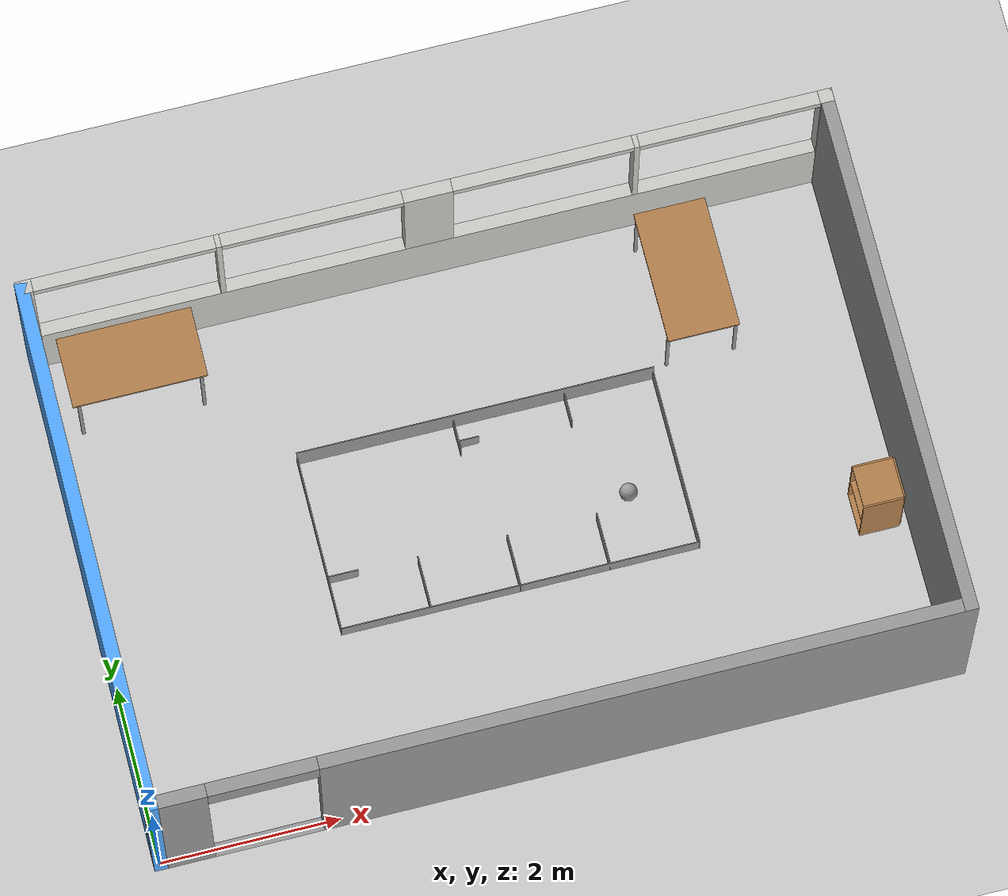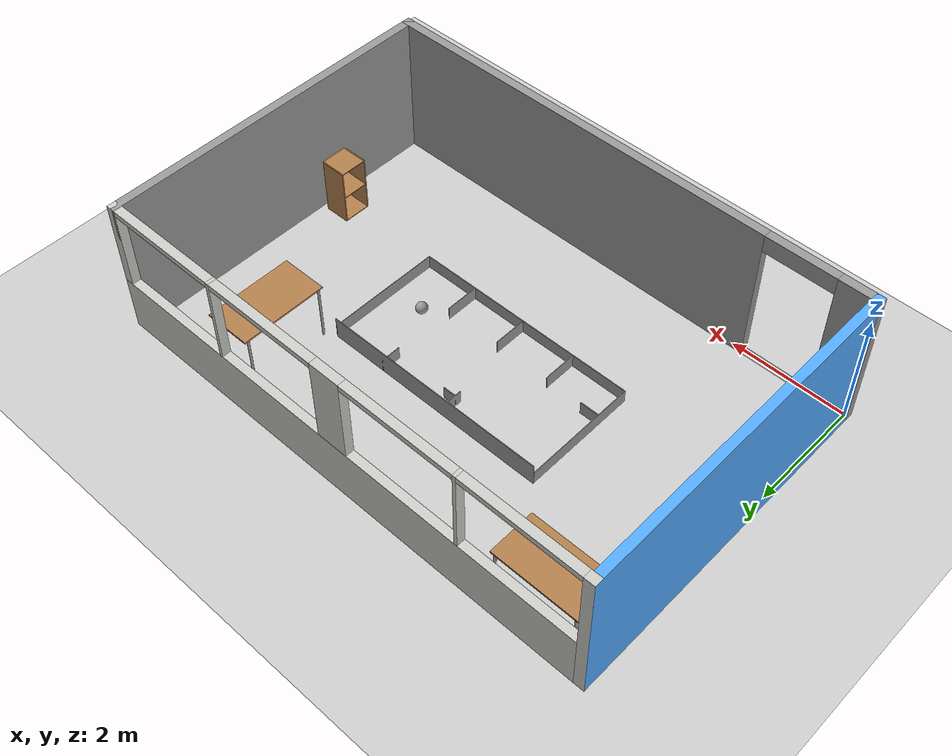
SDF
<sdf version="1.6">
 <world name="default">
  <light name="sun" type="directional">
   <pose>0 0 10 0 -0 0</pose>
   <diffuse>0.8 0.8 0.8 1</diffuse>
   <specular>0.2 0.2 0.2 1</specular>
   <attenuation>
    <range>1000</range>
    <constant>0.9</constant>
    <linear>0.01</linear>
    <quadratic>0.001</quadratic>
   </attenuation>
   <direction>-0.5 0.1 -0.9</direction>
  </light>
  <model name="ground_plane">
   <static>1</static>
   <link name="link">
    <collision name="collision">
     <geometry><plane><normal>0 0 1</normal><size>100 100</size></plane></geometry>
     <surface><friction><ode><mu>100</mu><mu2>50</mu2></ode></friction></surface>
    </collision>
    <visual name="visual">
     <cast_shadows>0</cast_shadows>
     <geometry><plane><normal>0 0 1</normal><size>100 100</size></plane></geometry>
     <material>
      <script><uri>file://media/materials/scripts/gazebo.material</uri><name>Gazebo/Grey</name></script>
     </material>
    </visual>
   </link>
  </model>
  <gravity>0 0 -9.8</gravity>
  <magnetic_field>6e-06 2.3e-05 -4.2e-05</magnetic_field>
  <atmosphere type="adiabatic"/>
  <physics name="default_physics" default="0" type="ode">
   <max_step_size>0.001</max_step_size>
   <real_time_factor>1</real_time_factor>
   <real_time_update_rate>1000</real_time_update_rate>
  </physics>
  <scene><ambient>0.4 0.4 0.4 1</ambient><background>0.7 0.7 0.7 1</background><shadows>1</shadows></scene>
  <spherical_coordinates>
   <surface_model>EARTH_WGS84</surface_model>
   <latitude_deg>0</latitude_deg>
   <longitude_deg>0</longitude_deg>
   <elevation>0</elevation>
   <heading_deg>0</heading_deg>
  </spherical_coordinates>
  <model name="mobileRoboticsWorkshop">
   <pose>4.425 2.925 0 0 -0 0</pose>
   <link name="Wall_10">
    <pose>0 2.925 0 0 -0 0</pose>
    <visual name="Wall_10_Visual_0">
     <pose>-4.40823 0 1.25 0 -0 0</pose>
     <geometry><box><size>0.18354 0.15 2.5</size></box></geometry>
     <material>
      <script><uri>file://media/materials/scripts/gazebo.material</uri><name>Gazebo/CeilingTiled</name></script>
      <ambient>1 1 1 1</ambient>
     </material>
     <meta><layer>0</layer></meta>
    </visual>
    <collision name="Wall_10_Collision_0">
     <geometry><box><size>0.18354 0.15 2.5</size></box></geometry>
     <pose>-4.40823 0 1.25 0 -0 0</pose>
    </collision>
    <visual name="Wall_10_Visual_1">
     <pose>0.09177 0 0.5 0 -0 0</pose>
     <geometry><box><size>8.81646 0.15 1</size></box></geometry>
     <material>
      <script><uri>file://media/materials/scripts/gazebo.material</uri><name>Gazebo/CeilingTiled</name></script>
      <ambient>1 1 1 1</ambient>
     </material>
     <meta><layer>0</layer></meta>
    </visual>
    <collision name="Wall_10_Collision_1">
     <geometry><box><size>8.81646 0.15 1</size></box></geometry>
     <pose>0.09177 0 0.5 0 -0 0</pose>
    </collision>
    <visual name="Wall_10_Visual_2">
     <pose>-2.28721 0 1.75 0 -0 0</pose>
     <geometry><box><size>0.0585 0.15 1.5</size></box></geometry>
     <material>
      <script><uri>file://media/materials/scripts/gazebo.material</uri><name>Gazebo/CeilingTiled</name></script>
      <ambient>1 1 1 1</ambient>
     </material>
     <meta><layer>0</layer></meta>
    </visual>
    <collision name="Wall_10_Collision_2">
     <geometry><box><size>0.0585 0.15 1.5</size></box></geometry>
     <pose>-2.28721 0 1.75 0 -0 0</pose>
    </collision>
    <visual name="Wall_10_Visual_3">
     <pose>0.01279 0 1.75 0 -0 0</pose>
     <geometry><box><size>0.5415 0.15 1.5</size></box></geometry>
     <material>
      <script><uri>file://media/materials/scripts/gazebo.material</uri><name>Gazebo/CeilingTiled</name></script>
      <ambient>1 1 1 1</ambient>
     </material>
     <meta><layer>0</layer></meta>
    </visual>
    <collision name="Wall_10_Collision_3">
     <geometry><box><size>0.5415 0.15 1.5</size></box></geometry>
     <pose>0.01279 0 1.75 0 -0 0</pose>
    </collision>
    <visual name="Wall_10_Visual_4">
     <pose>2.31279 0 1.75 0 -0 0</pose>
     <geometry><box><size>0.0585 0.15 1.5</size></box></geometry>
     <material>
      <script><uri>file://media/materials/scripts/gazebo.material</uri><name>Gazebo/CeilingTiled</name></script>
      <ambient>1 1 1 1</ambient>
     </material>
     <meta><layer>0</layer></meta>
    </visual>
    <collision name="Wall_10_Collision_4">
     <geometry><box><size>0.0585 0.15 1.5</size></box></geometry>
     <pose>2.31279 0 1.75 0 -0 0</pose>
    </collision>
    <visual name="Wall_10_Visual_5">
     <pose>4.42102 0 1.75 0 -0 0</pose>
     <geometry><box><size>0.15796 0.15 1.5</size></box></geometry>
     <material>
      <script><uri>file://media/materials/scripts/gazebo.material</uri><name>Gazebo/CeilingTiled</name></script>
      <ambient>1 1 1 1</ambient>
     </material>
     <meta><layer>0</layer></meta>
    </visual>
    <collision name="Wall_10_Collision_5">
     <geometry><box><size>0.15796 0.15 1.5</size></box></geometry>
     <pose>4.42102 0 1.75 0 -0 0</pose>
    </collision>
    <visual name="Wall_10_Visual_6">
     <pose>-3.31646 0 2.45 0 -0 0</pose>
     <geometry><box><size>2 0.15 0.1</size></box></geometry>
     <material>
      <script><uri>file://media/materials/scripts/gazebo.material</uri><name>Gazebo/CeilingTiled</name></script>
      <ambient>1 1 1 1</ambient>
     </material>
     <meta><layer>0</layer></meta>
    </visual>
    <collision name="Wall_10_Collision_6">
     <geometry><box><size>2 0.15 0.1</size></box></geometry>
     <pose>-3.31646 0 2.45 0 -0 0</pose>
    </collision>
    <visual name="Wall_10_Visual_7">
     <pose>-1.25796 0 2.45 0 -0 0</pose>
     <geometry><box><size>2 0.15 0.1</size></box></geometry>
     <material>
      <script><uri>file://media/materials/scripts/gazebo.material</uri><name>Gazebo/CeilingTiled</name></script>
      <ambient>1 1 1 1</ambient>
     </material>
     <meta><layer>0</layer></meta>
    </visual>
    <collision name="Wall_10_Collision_7">
     <geometry><box><size>2 0.15 0.1</size></box></geometry>
     <pose>-1.25796 0 2.45 0 -0 0</pose>
    </collision>
    <visual name="Wall_10_Visual_8">
     <pose>1.28354 0 2.45 0 -0 0</pose>
     <geometry><box><size>2 0.15 0.1</size></box></geometry>
     <material>
      <script><uri>file://media/materials/scripts/gazebo.material</uri><name>Gazebo/CeilingTiled</name></script>
      <ambient>1 1 1 1</ambient>
     </material>
     <meta><layer>0</layer></meta>
    </visual>
    <collision name="Wall_10_Collision_8">
     <geometry><box><size>2 0.15 0.1</size></box></geometry>
     <pose>1.28354 0 2.45 0 -0 0</pose>
    </collision>
    <visual name="Wall_10_Visual_9">
     <pose>3.34204 0 2.45 0 -0 0</pose>
     <geometry><box><size>2 0.15 0.1</size></box></geometry>
     <material>
      <script><uri>file://media/materials/scripts/gazebo.material</uri><name>Gazebo/CeilingTiled</name></script>
      <ambient>1 1 1 1</ambient>
     </material>
     <meta><layer>0</layer></meta>
    </visual>
    <collision name="Wall_10_Collision_9">
     <geometry><box><size>2 0.15 0.1</size></box></geometry>
     <pose>3.34204 0 2.45 0 -0 0</pose>
    </collision>
   </link>
   <link name="Wall_11">
    <collision name="Wall_11_Collision">
     <geometry><box><size>6 0.15 2.5</size></box></geometry>
     <pose>0 0 1.25 0 -0 0</pose>
    </collision>
    <visual name="Wall_11_Visual">
     <pose>0 0 1.25 0 -0 0</pose>
     <geometry><box><size>6 0.15 2.5</size></box></geometry>
     <material>
      <script><uri>file://media/materials/scripts/gazebo.material</uri><name>Gazebo/Grey</name></script>
      <ambient>1 1 1 1</ambient>
     </material>
     <meta><layer>0</layer></meta>
    </visual>
    <pose>4.425 0 0 0 0 -1.5708</pose>
   </link>
   <link name="Wall_12">
    <pose>0 -2.925 0 0 -0 3.14159</pose>
    <visual name="Wall_12_Visual_0">
     <pose>-0.9375 0 1.25 0 -0 0</pose>
     <geometry><box><size>7.125 0.15 2.5</size></box></geometry>
     <material>
      <script><uri>file://media/materials/scripts/gazebo.material</uri><name>Gazebo/Grey</name></script>
      <ambient>1 1 1 1</ambient>
     </material>
     <meta><layer>0</layer></meta>
    </visual>
    <collision name="Wall_12_Collision_0">
     <geometry><box><size>7.125 0.15 2.5</size></box></geometry>
     <pose>-0.9375 0 1.25 0 -0 0</pose>
    </collision>
    <visual name="Wall_12_Visual_1">
     <pose>4.1625 0 1.25 0 -0 0</pose>
     <geometry><box><size>0.675 0.15 2.5</size></box></geometry>
     <material>
      <script><uri>file://media/materials/scripts/gazebo.material</uri><name>Gazebo/Grey</name></script>
      <ambient>1 1 1 1</ambient>
     </material>
     <meta><layer>0</layer></meta>
    </visual>
    <collision name="Wall_12_Collision_1">
     <geometry><box><size>0.675 0.15 2.5</size></box></geometry>
     <pose>4.1625 0 1.25 0 -0 0</pose>
    </collision>
    <visual name="Wall_12_Visual_2">
     <pose>3.225 0 0 0 -0 0</pose>
     <geometry><box><size>1.2 0.15 0</size></box></geometry>
     <material>
      <script><uri>file://media/materials/scripts/gazebo.material</uri><name>Gazebo/Grey</name></script>
      <ambient>1 1 1 1</ambient>
     </material>
     <meta><layer>0</layer></meta>
    </visual>
    <collision name="Wall_12_Collision_2">
     <geometry><box><size>1.2 0.15 0</size></box></geometry>
     <pose>3.225 0 0 0 -0 0</pose>
    </collision>
    <visual name="Wall_12_Visual_3">
     <pose>3.225 0 2.35 0 -0 0</pose>
     <geometry><box><size>1.2 0.15 0.3</size></box></geometry>
     <material>
      <script><uri>file://media/materials/scripts/gazebo.material</uri><name>Gazebo/Grey</name></script>
      <ambient>1 1 1 1</ambient>
     </material>
     <meta><layer>0</layer></meta>
    </visual>
    <collision name="Wall_12_Collision_3">
     <geometry><box><size>1.2 0.15 0.3</size></box></geometry>
     <pose>3.225 0 2.35 0 -0 0</pose>
    </collision>
   </link>
   <link name="Wall_8">
    <collision name="Wall_8_Collision">
     <geometry><box><size>6 0.15 2.5</size></box></geometry>
     <pose>0 0 1.25 0 -0 0</pose>
    </collision>
    <visual name="Wall_8_Visual">
     <pose>0 0 1.25 0 -0 0</pose>
     <geometry><box><size>6 0.15 2.5</size></box></geometry>
     <material>
      <script><uri>file://media/materials/scripts/gazebo.material</uri><name>Gazebo/Grey</name></script>
      <ambient>0.333333 0.666667 1 1</ambient>
     </material>
     <meta><layer>0</layer></meta>
    </visual>
    <pose>-4.425 0 0 0 -0 1.5708</pose>
   </link>
   <static>1</static>
  </model>
  <model name="worldskillsCourt">
   <pose>4.5 3 0 0 -0 0</pose>
   <link name="Wall_0">
    <collision name="Wall_0_Collision">
     <geometry><box><size>4.01 0.01 0.24</size></box></geometry>
     <pose>0 0 0.12 0 -0 0</pose>
    </collision>
    <visual name="Wall_0_Visual">
     <pose>0 0 0.12 0 -0 0</pose>
     <geometry><box><size>4.01 0.01 0.24</size></box></geometry>
     <material>
      <script><uri>file://media/materials/scripts/gazebo.material</uri><name>Gazebo/Grey</name></script>
      <ambient>0.862745 0.862745 0.862745 1</ambient>
     </material>
     <meta><layer>0</layer></meta>
    </visual>
    <pose>0 -1 0 0 -0 0</pose>
   </link>
   <link name="Wall_1">
    <collision name="Wall_1_Collision">
     <geometry><box><size>2.01 0.01 0.24</size></box></geometry>
     <pose>0 0 0.12 0 -0 0</pose>
    </collision>
    <visual name="Wall_1_Visual">
     <pose>0 0 0.12 0 -0 0</pose>
     <geometry><box><size>2.01 0.01 0.24</size></box></geometry>
     <material>
      <script><uri>file://media/materials/scripts/gazebo.material</uri><name>Gazebo/Grey</name></script>
      <ambient>0.862745 0.862745 0.862745 1</ambient>
     </material>
     <meta><layer>0</layer></meta>
    </visual>
    <pose>2 0 0 0 -0 1.5708</pose>
   </link>
   <link name="Wall_10">
    <collision name="Wall_10_Collision">
     <geometry><box><size>0.591 0.01 0.24</size></box></geometry>
     <pose>0 0 0.12 0 -0 0</pose>
    </collision>
    <visual name="Wall_10_Visual">
     <pose>0 0 0.12 0 -0 0</pose>
     <geometry><box><size>0.591 0.01 0.24</size></box></geometry>
     <material>
      <script><uri>file://media/materials/scripts/gazebo.material</uri><name>Gazebo/Grey</name></script>
      <ambient>0.862745 0.862745 0.862745 1</ambient>
     </material>
     <meta><layer>0</layer></meta>
    </visual>
    <pose>0 -0.7095 0 0 -0 1.5708</pose>
   </link>
   <link name="Wall_12">
    <collision name="Wall_12_Collision">
     <geometry><box><size>0.591 0.01 0.24</size></box></geometry>
     <pose>0 0 0.12 0 -0 0</pose>
    </collision>
    <visual name="Wall_12_Visual">
     <pose>0 0 0.12 0 -0 0</pose>
     <geometry><box><size>0.591 0.01 0.24</size></box></geometry>
     <material>
      <script><uri>file://media/materials/scripts/gazebo.material</uri><name>Gazebo/Grey</name></script>
      <ambient>0.862745 0.862745 0.862745 1</ambient>
     </material>
     <meta><layer>0</layer></meta>
    </visual>
    <pose>1 -0.7095 0 0 -0 1.5708</pose>
   </link>
   <link name="Wall_16">
    <collision name="Wall_16_Collision">
     <geometry><box><size>0.341 0.01 0.24</size></box></geometry>
     <pose>0 0 0.12 0 -0 0</pose>
    </collision>
    <visual name="Wall_16_Visual">
     <pose>0 0 0.12 0 -0 0</pose>
     <geometry><box><size>0.341 0.01 0.24</size></box></geometry>
     <material>
      <script><uri>file://media/materials/scripts/gazebo.material</uri><name>Gazebo/Grey</name></script>
      <ambient>0.862745 0.862745 0.862745 1</ambient>
     </material>
     <meta><layer>0</layer></meta>
    </visual>
    <pose>1 0.8345 0 0 0 -1.5708</pose>
   </link>
   <link name="Wall_18">
    <collision name="Wall_18_Collision">
     <geometry><box><size>0.361 0.01 0.24</size></box></geometry>
     <pose>0 0 0.12 0 -0 0</pose>
    </collision>
    <visual name="Wall_18_Visual">
     <pose>0 0 0.12 0 -0 0</pose>
     <geometry><box><size>0.361 0.01 0.24</size></box></geometry>
     <material>
      <script><uri>file://media/materials/scripts/gazebo.material</uri><name>Gazebo/Grey</name></script>
      <ambient>0.862745 0.862745 0.862745 1</ambient>
     </material>
     <meta><layer>0</layer></meta>
    </visual>
    <pose>-0.25 0.8245 0 0 0 -1.5708</pose>
   </link>
   <link name="Wall_2">
    <collision name="Wall_2_Collision">
     <geometry><box><size>4.01 0.01 0.4</size></box></geometry>
     <pose>0 0 0.2 0 -0 0</pose>
    </collision>
    <visual name="Wall_2_Visual">
     <pose>0 0 0.2 0 -0 0</pose>
     <geometry><box><size>4.01 0.01 0.4</size></box></geometry>
     <material>
      <script><uri>file://media/materials/scripts/gazebo.material</uri><name>Gazebo/Grey</name></script>
      <ambient>0.862745 0.862745 0.862745 1</ambient>
     </material>
     <meta><layer>0</layer></meta>
    </visual>
    <pose>0 1 0 0 -0 3.14159</pose>
   </link>
   <link name="Wall_20">
    <collision name="Wall_20_Collision">
     <geometry><box><size>0.231 0.01 0.24</size></box></geometry>
     <pose>0 0 0.12 0 -0 0</pose>
    </collision>
    <visual name="Wall_20_Visual">
     <pose>0 0 0.12 0 -0 0</pose>
     <geometry><box><size>0.231 0.01 0.24</size></box></geometry>
     <material>
      <script><uri>file://media/materials/scripts/gazebo.material</uri><name>Gazebo/Grey</name></script>
      <ambient>0.862745 0.862745 0.862745 1</ambient>
     </material>
     <meta><layer>0</layer></meta>
    </visual>
    <pose>-0.1395 0.75 0 0 -0 0</pose>
   </link>
   <link name="Wall_3">
    <collision name="Wall_3_Collision">
     <geometry><box><size>2.01 0.01 0.24</size></box></geometry>
     <pose>0 0 0.12 0 -0 0</pose>
    </collision>
    <visual name="Wall_3_Visual">
     <pose>0 0 0.12 0 -0 0</pose>
     <geometry><box><size>2.01 0.01 0.24</size></box></geometry>
     <material>
      <script><uri>file://media/materials/scripts/gazebo.material</uri><name>Gazebo/Grey</name></script>
      <ambient>0.862745 0.862745 0.862745 1</ambient>
     </material>
     <meta><layer>0</layer></meta>
    </visual>
    <pose>-2 0 0 0 0 -1.5708</pose>
   </link>
   <link name="Wall_5">
    <collision name="Wall_5_Collision">
     <geometry><box><size>0.341 0.01 0.24</size></box></geometry>
     <pose>0 0 0.12 0 -0 0</pose>
    </collision>
    <visual name="Wall_5_Visual">
     <pose>0 0 0.12 0 -0 0</pose>
     <geometry><box><size>0.341 0.01 0.24</size></box></geometry>
     <material>
      <script><uri>file://media/materials/scripts/gazebo.material</uri><name>Gazebo/Grey</name></script>
      <ambient>0.862745 0.862745 0.862745 1</ambient>
     </material>
     <meta><layer>0</layer></meta>
    </visual>
    <pose>-1.8345 -0.4 0 0 -0 0</pose>
   </link>
   <link name="Wall_7">
    <collision name="Wall_7_Collision">
     <geometry><box><size>0.591 0.01 0.24</size></box></geometry>
     <pose>0 0 0.12 0 -0 0</pose>
    </collision>
    <visual name="Wall_7_Visual">
     <pose>0 0 0.12 0 -0 0</pose>
     <geometry><box><size>0.591 0.01 0.24</size></box></geometry>
     <material>
      <script><uri>file://media/materials/scripts/gazebo.material</uri><name>Gazebo/Grey</name></script>
      <ambient>0.862745 0.862745 0.862745 1</ambient>
     </material>
     <meta><layer>0</layer></meta>
    </visual>
    <pose>-1 -0.7085 0 0 -0 1.5708</pose>
   </link>
   <static>1</static>
  </model>
  <model name="cabinet">
   <static>1</static>
   <link name="cabinet_bottom_plate">
    <inertial>
     <pose>0 0 -1 0 -0 0</pose>
     <inertia><ixx>2.05</ixx><ixy>0</ixy><ixz>0</ixz><iyy>2.05</iyy><iyz>0</iyz><izz>2.05</izz></inertia>
     <mass>25</mass>
    </inertial>
    <collision name="cabinet_bottom_plate_geom">
     <pose>0 0 0.01 0 -0 0</pose>
     <geometry><box><size>0.45 0.45 0.02</size></box></geometry>
    </collision>
    <visual name="cabinet_bottom_plate_geom_visual">
     <pose>0 0 0.01 0 -0 0</pose>
     <geometry><box><size>0.45 0.45 0.02</size></box></geometry>
     <material>
      <script><uri>file://media/materials/scripts/gazebo.material</uri><name>Gazebo/Wood</name></script>
     </material>
    </visual>
    <collision name="cabinet_bottom_plate_geom_cabinet_back_plate">
     <pose>0.235 0 0.51 0 -0 0</pose>
     <geometry><box><size>0.02 0.45 1.02</size></box></geometry>
    </collision>
    <visual name="cabinet_bottom_plate_geom_cabinet_back_plate_visual">
     <pose>0.235 0 0.51 0 -0 0</pose>
     <geometry><box><size>0.02 0.45 1.02</size></box></geometry>
     <material>
      <script><uri>file://media/materials/scripts/gazebo.material</uri><name>Gazebo/Wood</name></script>
     </material>
    </visual>
    <collision name="cabinet_bottom_plate_geom_cabinet_left_plate">
     <pose>0 0.235 0.51 0 -0 0</pose>
     <geometry><box><size>0.45 0.02 1.02</size></box></geometry>
    </collision>
    <visual name="cabinet_bottom_plate_geom_cabinet_left_plate_visual">
     <pose>0 0.235 0.51 0 -0 0</pose>
     <geometry><box><size>0.45 0.02 1.02</size></box></geometry>
     <material>
      <script><uri>file://media/materials/scripts/gazebo.material</uri><name>Gazebo/Wood</name></script>
     </material>
    </visual>
    <collision name="cabinet_bottom_plate_geom_cabinet_middle_plate">
     <pose>0 0 0.51 0 -0 0</pose>
     <geometry><box><size>0.45 0.45 0.02</size></box></geometry>
    </collision>
    <visual name="cabinet_bottom_plate_geom_cabinet_middle_plate_visual">
     <pose>0 0 0.51 0 -0 0</pose>
     <geometry><box><size>0.45 0.45 0.02</size></box></geometry>
     <material>
      <script><uri>file://media/materials/scripts/gazebo.material</uri><name>Gazebo/Wood</name></script>
     </material>
    </visual>
    <collision name="cabinet_bottom_plate_geom_cabinet_right_plate">
     <pose>0 -0.235 0.51 0 -0 0</pose>
     <geometry><box><size>0.45 0.02 1.02</size></box></geometry>
    </collision>
    <visual name="cabinet_bottom_plate_geom_cabinet_right_plate_visual">
     <pose>0 -0.235 0.51 0 -0 0</pose>
     <geometry><box><size>0.45 0.02 1.02</size></box></geometry>
     <material>
      <script><uri>file://media/materials/scripts/gazebo.material</uri><name>Gazebo/Wood</name></script>
     </material>
    </visual>
    <collision name="cabinet_bottom_plate_geom_cabinet_top_plate">
     <pose>0 0 1.01 0 -0 0</pose>
     <geometry><box><size>0.45 0.45 0.02</size></box></geometry>
    </collision>
    <visual name="cabinet_bottom_plate_geom_cabinet_top_plate_visual">
     <pose>0 0 1.01 0 -0 0</pose>
     <geometry><box><size>0.45 0.45 0.02</size></box></geometry>
     <material>
      <script><uri>file://media/materials/scripts/gazebo.material</uri><name>Gazebo/Wood</name></script>
     </material>
    </visual>
   </link>
   <pose>8.44835 1.9496 0 0 -0 0</pose>
  </model>
  <model name="table">
   <static>1</static>
   <link name="link">
    <collision name="surface">
     <pose>0 0 1 0 -0 0</pose>
     <geometry><box><size>1.5 0.8 0.03</size></box></geometry>
     <surface><friction><ode><mu>0.6</mu><mu2>0.6</mu2></ode></friction></surface>
    </collision>
    <visual name="visual1">
     <pose>0 0 1 0 -0 0</pose>
     <geometry><box><size>1.5 0.8 0.03</size></box></geometry>
     <material>
      <script><uri>file://media/materials/scripts/gazebo.material</uri><name>Gazebo/Wood</name></script>
     </material>
    </visual>
    <collision name="front_left_leg">
     <pose>0.68 0.38 0.5 0 -0 0</pose>
     <geometry><cylinder><radius>0.02</radius><length>1</length></cylinder></geometry>
    </collision>
    <visual name="front_left_leg">
     <pose>0.68 0.38 0.5 0 -0 0</pose>
     <geometry><cylinder><radius>0.02</radius><length>1</length></cylinder></geometry>
     <material>
      <script><uri>file://media/materials/scripts/gazebo.material</uri><name>Gazebo/Grey</name></script>
     </material>
    </visual>
    <collision name="front_right_leg">
     <pose>0.68 -0.38 0.5 0 -0 0</pose>
     <geometry><cylinder><radius>0.02</radius><length>1</length></cylinder></geometry>
    </collision>
    <visual name="front_right_leg">
     <pose>0.68 -0.38 0.5 0 -0 0</pose>
     <geometry><cylinder><radius>0.02</radius><length>1</length></cylinder></geometry>
     <material>
      <script><uri>file://media/materials/scripts/gazebo.material</uri><name>Gazebo/Grey</name></script>
     </material>
    </visual>
    <collision name="back_right_leg">
     <pose>-0.68 -0.38 0.5 0 -0 0</pose>
     <geometry><cylinder><radius>0.02</radius><length>1</length></cylinder></geometry>
    </collision>
    <visual name="back_right_leg">
     <pose>-0.68 -0.38 0.5 0 -0 0</pose>
     <geometry><cylinder><radius>0.02</radius><length>1</length></cylinder></geometry>
     <material>
      <script><uri>file://media/materials/scripts/gazebo.material</uri><name>Gazebo/Grey</name></script>
     </material>
    </visual>
    <collision name="back_left_leg">
     <pose>-0.68 0.38 0.5 0 -0 0</pose>
     <geometry><cylinder><radius>0.02</radius><length>1</length></cylinder></geometry>
    </collision>
    <visual name="back_left_leg">
     <pose>-0.68 0.38 0.5 0 -0 0</pose>
     <geometry><cylinder><radius>0.02</radius><length>1</length></cylinder></geometry>
     <material>
      <script><uri>file://media/materials/scripts/gazebo.material</uri><name>Gazebo/Grey</name></script>
     </material>
    </visual>
   </link>
   <pose>7.06652 4.79915 0 0 -0 1.5707</pose>
  </model>
  <model name="table_clone">
   <static>1</static>
   <link name="link">
    <collision name="surface">
     <pose>0 0 1 0 -0 0</pose>
     <geometry><box><size>1.5 0.8 0.03</size></box></geometry>
     <surface><friction><ode><mu>0.6</mu><mu2>0.6</mu2></ode></friction></surface>
    </collision>
    <visual name="visual1">
     <pose>0 0 1 0 -0 0</pose>
     <geometry><box><size>1.5 0.8 0.03</size></box></geometry>
     <material>
      <script><uri>file://media/materials/scripts/gazebo.material</uri><name>Gazebo/Wood</name></script>
     </material>
    </visual>
    <collision name="front_left_leg">
     <pose>0.68 0.38 0.5 0 -0 0</pose>
     <geometry><cylinder><radius>0.02</radius><length>1</length></cylinder></geometry>
    </collision>
    <visual name="front_left_leg">
     <pose>0.68 0.38 0.5 0 -0 0</pose>
     <geometry><cylinder><radius>0.02</radius><length>1</length></cylinder></geometry>
     <material>
      <script><uri>file://media/materials/scripts/gazebo.material</uri><name>Gazebo/Grey</name></script>
     </material>
    </visual>
    <collision name="front_right_leg">
     <pose>0.68 -0.38 0.5 0 -0 0</pose>
     <geometry><cylinder><radius>0.02</radius><length>1</length></cylinder></geometry>
    </collision>
    <visual name="front_right_leg">
     <pose>0.68 -0.38 0.5 0 -0 0</pose>
     <geometry><cylinder><radius>0.02</radius><length>1</length></cylinder></geometry>
     <material>
      <script><uri>file://media/materials/scripts/gazebo.material</uri><name>Gazebo/Grey</name></script>
     </material>
    </visual>
    <collision name="back_right_leg">
     <pose>-0.68 -0.38 0.5 0 -0 0</pose>
     <geometry><cylinder><radius>0.02</radius><length>1</length></cylinder></geometry>
    </collision>
    <visual name="back_right_leg">
     <pose>-0.68 -0.38 0.5 0 -0 0</pose>
     <geometry><cylinder><radius>0.02</radius><length>1</length></cylinder></geometry>
     <material>
      <script><uri>file://media/materials/scripts/gazebo.material</uri><name>Gazebo/Grey</name></script>
     </material>
    </visual>
    <collision name="back_left_leg">
     <pose>-0.68 0.38 0.5 0 -0 0</pose>
     <geometry><cylinder><radius>0.02</radius><length>1</length></cylinder></geometry>
    </collision>
    <visual name="back_left_leg">
     <pose>-0.68 0.38 0.5 0 -0 0</pose>
     <geometry><cylinder><radius>0.02</radius><length>1</length></cylinder></geometry>
     <material>
      <script><uri>file://media/materials/scripts/gazebo.material</uri><name>Gazebo/Grey</name></script>
     </material>
    </visual>
   </link>
   <pose>1 5.3 0 0 -0 0</pose>
  </model>
  <model name="my_ball">
   <link name="link_0">
    <inertial>
     <mass>1</mass>
     <inertia><ixx>0.1</ixx><ixy>0</ixy><ixz>0</ixz><iyy>0.1</iyy><iyz>0</iyz><izz>0.1</izz></inertia>
    </inertial>
    <visual name="visual">
     <geometry><sphere><radius>0.1</radius></sphere></geometry>
     <material>
      <lighting>1</lighting>
      <script><uri>file://media/materials/scripts/gazebo.material</uri><name>Gazebo/Grey</name></script>
      <shader type="pixel"><normal_map>__default__</normal_map></shader>
      <ambient>1 1 1 1</ambient>
      <diffuse>1 1 1 1</diffuse>
      <specular>1 1 1 1</specular>
      <emissive>0 0 0 1</emissive>
     </material>
    </visual>
    <collision name="collision">
     <geometry><sphere><radius>0.1</radius></sphere></geometry>
     <surface>
      <friction>
       <ode><mu>1</mu><mu2>1</mu2><fdir1>0 0 0</fdir1><slip1>0</slip1><slip2>0</slip2></ode>
       <torsional>
        <coefficient>1</coefficient>
        <patch_radius>0</patch_radius>
        <surface_radius>0</surface_radius>
        <use_patch_radius>1</use_patch_radius>
        <ode><slip>0</slip></ode>
       </torsional>
      </friction>
      <bounce><restitution_coefficient>0</restitution_coefficient><threshold>1e+06</threshold></bounce>
      <contact>
       <collide_without_contact>0</collide_without_contact>
       <collide_without_contact_bitmask>1</collide_without_contact_bitmask>
       <collide_bitmask>1</collide_bitmask>
       <ode>
        <soft_cfm>0</soft_cfm>
        <soft_erp>0.2</soft_erp>
        <kp>1e+13</kp>
        <kd>1</kd>
        <max_vel>0.01</max_vel>
        <min_depth>0</min_depth>
       </ode>
       <bullet>
        <split_impulse>1</split_impulse>
        <split_impulse_penetration_threshold>-0.01</split_impulse_penetration_threshold>
        <soft_cfm>0</soft_cfm>
        <soft_erp>0.2</soft_erp>
        <kp>1e+13</kp>
        <kd>1</kd>
       </bullet>
      </contact>
     </surface>
    </collision>
   </link>
   <static>0</static>
   <pose>5.90802 2.77285 0.1 0 -0 0</pose>
  </model>
 </world>
</sdf>
